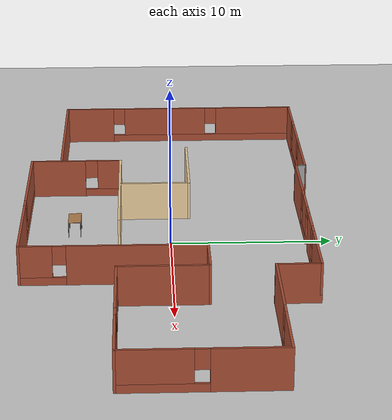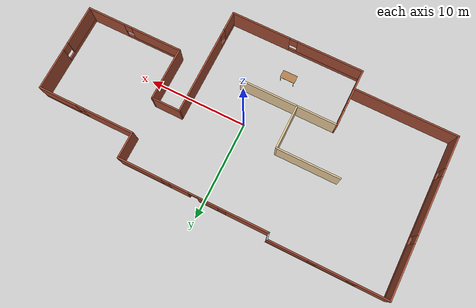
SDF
<sdf version="1.6">
 <world name="default">
  <model name="ground_plane">
   <static>1</static>
   <link name="link">
    <collision name="collision">
     <geometry><plane><normal>0 0 1</normal><size>100 100</size></plane></geometry>
     <surface><friction><ode><mu>100</mu><mu2>50</mu2></ode></friction></surface>
    </collision>
    <visual name="visual">
     <cast_shadows>0</cast_shadows>
     <geometry><plane><normal>0 0 1</normal><size>100 100</size></plane></geometry>
     <material>
      <script><uri>file://media/materials/scripts/gazebo.material</uri><name>Gazebo/Grey</name></script>
     </material>
    </visual>
   </link>
  </model>
  <model name="house2">
   <link name="Wall_33">
    <pose>0.928261 8.42543 0 0 -0 0</pose>
    <visual name="Wall_33_Visual_0">
     <pose>-5.47446 0 1.25 0 -0 0</pose>
     <geometry><box><size>4.30109 0.15 2.5</size></box></geometry>
     <material>
      <script><uri>file://media/materials/scripts/gazebo.material</uri><name>Gazebo/Bricks</name></script>
      <ambient>0.760784 0.662745 0.627451 1</ambient>
     </material>
     <meta><layer>0</layer></meta>
    </visual>
    <collision name="Wall_33_Collision_0">
     <geometry><box><size>4.30109 0.15 2.5</size></box></geometry>
     <pose>-5.47446 0 1.25 0 -0 0</pose>
    </collision>
    <visual name="Wall_33_Visual_1">
     <pose>1.34457 0 1.25 0 -0 0</pose>
     <geometry><box><size>1.93261 0.15 2.5</size></box></geometry>
     <material>
      <script><uri>file://media/materials/scripts/gazebo.material</uri><name>Gazebo/Bricks</name></script>
      <ambient>0.760784 0.662745 0.627451 1</ambient>
     </material>
     <meta><layer>0</layer></meta>
    </visual>
    <collision name="Wall_33_Collision_1">
     <geometry><box><size>1.93261 0.15 2.5</size></box></geometry>
     <pose>1.34457 0 1.25 0 -0 0</pose>
    </collision>
    <visual name="Wall_33_Visual_2">
     <pose>-1.92283 0 0.25 0 -0 0</pose>
     <geometry><box><size>2.80217 0.15 0.5</size></box></geometry>
     <material>
      <script><uri>file://media/materials/scripts/gazebo.material</uri><name>Gazebo/Bricks</name></script>
      <ambient>0.760784 0.662745 0.627451 1</ambient>
     </material>
     <meta><layer>0</layer></meta>
    </visual>
    <collision name="Wall_33_Collision_2">
     <geometry><box><size>2.80217 0.15 0.5</size></box></geometry>
     <pose>-1.92283 0 0.25 0 -0 0</pose>
    </collision>
    <visual name="Wall_33_Visual_3">
     <pose>4.96793 0 0.25 0 -0 0</pose>
     <geometry><box><size>5.31413 0.15 0.5</size></box></geometry>
     <material>
      <script><uri>file://media/materials/scripts/gazebo.material</uri><name>Gazebo/Bricks</name></script>
      <ambient>0.760784 0.662745 0.627451 1</ambient>
     </material>
     <meta><layer>0</layer></meta>
    </visual>
    <collision name="Wall_33_Collision_3">
     <geometry><box><size>5.31413 0.15 0.5</size></box></geometry>
     <pose>4.96793 0 0.25 0 -0 0</pose>
    </collision>
    <visual name="Wall_33_Visual_4">
     <pose>-1.52283 0 1.5 0 -0 0</pose>
     <geometry><box><size>2.00217 0.15 2</size></box></geometry>
     <material>
      <script><uri>file://media/materials/scripts/gazebo.material</uri><name>Gazebo/Bricks</name></script>
      <ambient>0.760784 0.662745 0.627451 1</ambient>
     </material>
     <meta><layer>0</layer></meta>
    </visual>
    <collision name="Wall_33_Collision_4">
     <geometry><box><size>2.00217 0.15 2</size></box></geometry>
     <pose>-1.52283 0 1.5 0 -0 0</pose>
    </collision>
    <visual name="Wall_33_Visual_5">
     <pose>-1.52283 0 1.5 0 -0 0</pose>
     <geometry><box><size>2.00217 0.15 2</size></box></geometry>
     <material>
      <script><uri>file://media/materials/scripts/gazebo.material</uri><name>Gazebo/Bricks</name></script>
      <ambient>0.760784 0.662745 0.627451 1</ambient>
     </material>
     <meta><layer>0</layer></meta>
    </visual>
    <collision name="Wall_33_Collision_5">
     <geometry><box><size>2.00217 0.15 2</size></box></geometry>
     <pose>-1.52283 0 1.5 0 -0 0</pose>
    </collision>
    <visual name="Wall_33_Visual_6">
     <pose>5.36794 0 1.5 0 -0 0</pose>
     <geometry><box><size>4.51413 0.15 2</size></box></geometry>
     <material>
      <script><uri>file://media/materials/scripts/gazebo.material</uri><name>Gazebo/Bricks</name></script>
      <ambient>0.760784 0.662745 0.627451 1</ambient>
     </material>
     <meta><layer>0</layer></meta>
    </visual>
    <collision name="Wall_33_Collision_6">
     <geometry><box><size>4.51413 0.15 2</size></box></geometry>
     <pose>5.36794 0 1.5 0 -0 0</pose>
    </collision>
    <visual name="Wall_33_Visual_7">
     <pose>-2.92391 0 1.9 0 -0 0</pose>
     <geometry><box><size>0.8 0.15 1.2</size></box></geometry>
     <material>
      <script><uri>file://media/materials/scripts/gazebo.material</uri><name>Gazebo/Bricks</name></script>
      <ambient>0.760784 0.662745 0.627451 1</ambient>
     </material>
     <meta><layer>0</layer></meta>
    </visual>
    <collision name="Wall_33_Collision_7">
     <geometry><box><size>0.8 0.15 1.2</size></box></geometry>
     <pose>-2.92391 0 1.9 0 -0 0</pose>
    </collision>
    <visual name="Wall_33_Visual_8">
     <pose>2.71087 0 1.9 0 -0 0</pose>
     <geometry><box><size>0.8 0.15 1.2</size></box></geometry>
     <material>
      <script><uri>file://media/materials/scripts/gazebo.material</uri><name>Gazebo/Bricks</name></script>
      <ambient>0.760784 0.662745 0.627451 1</ambient>
     </material>
     <meta><layer>0</layer></meta>
    </visual>
    <collision name="Wall_33_Collision_8">
     <geometry><box><size>0.8 0.15 1.2</size></box></geometry>
     <pose>2.71087 0 1.9 0 -0 0</pose>
    </collision>
    <visual name="Wall_33_Visual_9">
     <pose>-0.071739 0 2.25 0 -0 0</pose>
     <geometry><box><size>0.9 0.15 0.5</size></box></geometry>
     <material>
      <script><uri>file://media/materials/scripts/gazebo.material</uri><name>Gazebo/Bricks</name></script>
      <ambient>0.760784 0.662745 0.627451 1</ambient>
     </material>
     <meta><layer>0</layer></meta>
    </visual>
    <collision name="Wall_33_Collision_9">
     <geometry><box><size>0.9 0.15 0.5</size></box></geometry>
     <pose>-0.071739 0 2.25 0 -0 0</pose>
    </collision>
    <visual name="Wall_33_Visual_10">
     <pose>-0.071739 0 2.25 0 -0 0</pose>
     <geometry><box><size>0.9 0.15 0.5</size></box></geometry>
     <material>
      <script><uri>file://media/materials/scripts/gazebo.material</uri><name>Gazebo/Bricks</name></script>
      <ambient>0.760784 0.662745 0.627451 1</ambient>
     </material>
     <meta><layer>0</layer></meta>
    </visual>
    <collision name="Wall_33_Collision_10">
     <geometry><box><size>0.9 0.15 0.5</size></box></geometry>
     <pose>-0.071739 0 2.25 0 -0 0</pose>
    </collision>
   </link>
   <link name="Wall_34">
    <collision name="Wall_34_Collision">
     <geometry><box><size>2.75 0.15 2.5</size></box></geometry>
     <pose>0 0 1.25 0 -0 0</pose>
    </collision>
    <visual name="Wall_34_Visual">
     <pose>0 0 1.25 0 -0 0</pose>
     <geometry><box><size>2.75 0.15 2.5</size></box></geometry>
     <material>
      <script><uri>file://media/materials/scripts/gazebo.material</uri><name>Gazebo/Bricks</name></script>
      <ambient>1 1 1 1</ambient>
     </material>
     <meta><layer>0</layer></meta>
    </visual>
    <pose>8.47826 7.12543 0 0 0 -1.5708</pose>
   </link>
   <link name="Wall_35">
    <pose>13.4033 5.82543 0 0 -0 0</pose>
    <visual name="Wall_35_Visual_0">
     <pose>-2.38206 0 1.25 0 -0 0</pose>
     <geometry><box><size>5.23587 0.15 2.5</size></box></geometry>
     <material>
      <script><uri>file://media/materials/scripts/gazebo.material</uri><name>Gazebo/Bricks</name></script>
      <ambient>0.760784 0.662745 0.627451 1</ambient>
     </material>
     <meta><layer>0</layer></meta>
    </visual>
    <collision name="Wall_35_Collision_0">
     <geometry><box><size>5.23587 0.15 2.5</size></box></geometry>
     <pose>-2.38206 0 1.25 0 -0 0</pose>
    </collision>
    <visual name="Wall_35_Visual_1">
     <pose>2.61794 0 0.25 0 -0 0</pose>
     <geometry><box><size>4.76413 0.15 0.5</size></box></geometry>
     <material>
      <script><uri>file://media/materials/scripts/gazebo.material</uri><name>Gazebo/Bricks</name></script>
      <ambient>0.760784 0.662745 0.627451 1</ambient>
     </material>
     <meta><layer>0</layer></meta>
    </visual>
    <collision name="Wall_35_Collision_1">
     <geometry><box><size>4.76413 0.15 0.5</size></box></geometry>
     <pose>2.61794 0 0.25 0 -0 0</pose>
    </collision>
    <visual name="Wall_35_Visual_2">
     <pose>3.01794 0 1.5 0 -0 0</pose>
     <geometry><box><size>3.96413 0.15 2</size></box></geometry>
     <material>
      <script><uri>file://media/materials/scripts/gazebo.material</uri><name>Gazebo/Bricks</name></script>
      <ambient>0.760784 0.662745 0.627451 1</ambient>
     </material>
     <meta><layer>0</layer></meta>
    </visual>
    <collision name="Wall_35_Collision_2">
     <geometry><box><size>3.96413 0.15 2</size></box></geometry>
     <pose>3.01794 0 1.5 0 -0 0</pose>
    </collision>
    <visual name="Wall_35_Visual_3">
     <pose>0.63587 0 1.9 0 -0 0</pose>
     <geometry><box><size>0.8 0.15 1.2</size></box></geometry>
     <material>
      <script><uri>file://media/materials/scripts/gazebo.material</uri><name>Gazebo/Bricks</name></script>
      <ambient>0.760784 0.662745 0.627451 1</ambient>
     </material>
     <meta><layer>0</layer></meta>
    </visual>
    <collision name="Wall_35_Collision_3">
     <geometry><box><size>0.8 0.15 1.2</size></box></geometry>
     <pose>0.63587 0 1.9 0 -0 0</pose>
    </collision>
   </link>
   <link name="Wall_36">
    <pose>18.3283 1.27543 0 0 0 -1.5708</pose>
    <visual name="Wall_36_Visual_0">
     <pose>-2.4875 0 1.25 0 -0 0</pose>
     <geometry><box><size>4.275 0.15 2.5</size></box></geometry>
     <material>
      <script><uri>file://media/materials/scripts/gazebo.material</uri><name>Gazebo/Bricks</name></script>
      <ambient>0.760784 0.662745 0.627451 1</ambient>
     </material>
     <meta><layer>0</layer></meta>
    </visual>
    <collision name="Wall_36_Collision_0">
     <geometry><box><size>4.275 0.15 2.5</size></box></geometry>
     <pose>-2.4875 0 1.25 0 -0 0</pose>
    </collision>
    <visual name="Wall_36_Visual_1">
     <pose>2.1375 0 0.25 0 -0 0</pose>
     <geometry><box><size>4.975 0.15 0.5</size></box></geometry>
     <material>
      <script><uri>file://media/materials/scripts/gazebo.material</uri><name>Gazebo/Bricks</name></script>
      <ambient>0.760784 0.662745 0.627451 1</ambient>
     </material>
     <meta><layer>0</layer></meta>
    </visual>
    <collision name="Wall_36_Collision_1">
     <geometry><box><size>4.975 0.15 0.5</size></box></geometry>
     <pose>2.1375 0 0.25 0 -0 0</pose>
    </collision>
    <visual name="Wall_36_Visual_2">
     <pose>2.5375 0 1.5 0 -0 0</pose>
     <geometry><box><size>4.175 0.15 2</size></box></geometry>
     <material>
      <script><uri>file://media/materials/scripts/gazebo.material</uri><name>Gazebo/Bricks</name></script>
      <ambient>0.760784 0.662745 0.627451 1</ambient>
     </material>
     <meta><layer>0</layer></meta>
    </visual>
    <collision name="Wall_36_Collision_2">
     <geometry><box><size>4.175 0.15 2</size></box></geometry>
     <pose>2.5375 0 1.5 0 -0 0</pose>
    </collision>
    <visual name="Wall_36_Visual_3">
     <pose>0.049999 0 1.9 0 -0 0</pose>
     <geometry><box><size>0.8 0.15 1.2</size></box></geometry>
     <material>
      <script><uri>file://media/materials/scripts/gazebo.material</uri><name>Gazebo/Bricks</name></script>
      <ambient>0.760784 0.662745 0.627451 1</ambient>
     </material>
     <meta><layer>0</layer></meta>
    </visual>
    <collision name="Wall_36_Collision_3">
     <geometry><box><size>0.8 0.15 1.2</size></box></geometry>
     <pose>0.049999 0 1.9 0 -0 0</pose>
    </collision>
   </link>
   <link name="Wall_37">
    <pose>13.4033 -3.27457 0 0 -0 3.14159</pose>
    <visual name="Wall_37_Visual_0">
     <pose>-3.03533 0 1.25 0 -0 0</pose>
     <geometry><box><size>3.92935 0.15 2.5</size></box></geometry>
     <material>
      <script><uri>file://media/materials/scripts/gazebo.material</uri><name>Gazebo/Bricks</name></script>
      <ambient>0.760784 0.662745 0.627451 1</ambient>
     </material>
     <meta><layer>0</layer></meta>
    </visual>
    <collision name="Wall_37_Collision_0">
     <geometry><box><size>3.92935 0.15 2.5</size></box></geometry>
     <pose>-3.03533 0 1.25 0 -0 0</pose>
    </collision>
    <visual name="Wall_37_Visual_1">
     <pose>1.96467 0 0.25 0 -0 0</pose>
     <geometry><box><size>6.07065 0.15 0.5</size></box></geometry>
     <material>
      <script><uri>file://media/materials/scripts/gazebo.material</uri><name>Gazebo/Bricks</name></script>
      <ambient>0.760784 0.662745 0.627451 1</ambient>
     </material>
     <meta><layer>0</layer></meta>
    </visual>
    <collision name="Wall_37_Collision_1">
     <geometry><box><size>6.07065 0.15 0.5</size></box></geometry>
     <pose>1.96467 0 0.25 0 -0 0</pose>
    </collision>
    <visual name="Wall_37_Visual_2">
     <pose>2.36467 0 1.5 0 -0 0</pose>
     <geometry><box><size>5.27065 0.15 2</size></box></geometry>
     <material>
      <script><uri>file://media/materials/scripts/gazebo.material</uri><name>Gazebo/Bricks</name></script>
      <ambient>0.760784 0.662745 0.627451 1</ambient>
     </material>
     <meta><layer>0</layer></meta>
    </visual>
    <collision name="Wall_37_Collision_2">
     <geometry><box><size>5.27065 0.15 2</size></box></geometry>
     <pose>2.36467 0 1.5 0 -0 0</pose>
    </collision>
    <visual name="Wall_37_Visual_3">
     <pose>-0.670652 0 1.9 0 -0 0</pose>
     <geometry><box><size>0.8 0.15 1.2</size></box></geometry>
     <material>
      <script><uri>file://media/materials/scripts/gazebo.material</uri><name>Gazebo/Bricks</name></script>
      <ambient>0.760784 0.662745 0.627451 1</ambient>
     </material>
     <meta><layer>0</layer></meta>
    </visual>
    <collision name="Wall_37_Collision_3">
     <geometry><box><size>0.8 0.15 1.2</size></box></geometry>
     <pose>-0.670652 0 1.9 0 -0 0</pose>
    </collision>
   </link>
   <link name="Wall_38">
    <collision name="Wall_38_Collision">
     <geometry><box><size>5.5 0.15 2.5</size></box></geometry>
     <pose>0 0 1.25 0 -0 0</pose>
    </collision>
    <visual name="Wall_38_Visual">
     <pose>0 0 1.25 0 -0 0</pose>
     <geometry><box><size>5.5 0.15 2.5</size></box></geometry>
     <material>
      <script><uri>file://media/materials/scripts/gazebo.material</uri><name>Gazebo/Bricks</name></script>
      <ambient>1 1 1 1</ambient>
     </material>
     <meta><layer>0</layer></meta>
    </visual>
    <pose>8.47826 -0.599571 0 0 -0 1.5708</pose>
   </link>
   <link name="Wall_39">
    <collision name="Wall_39_Collision">
     <geometry><box><size>3 0.15 2.5</size></box></geometry>
     <pose>0 0 1.25 0 -0 0</pose>
    </collision>
    <visual name="Wall_39_Visual">
     <pose>0 0 1.25 0 -0 0</pose>
     <geometry><box><size>3 0.15 2.5</size></box></geometry>
     <material>
      <script><uri>file://media/materials/scripts/gazebo.material</uri><name>Gazebo/Bricks</name></script>
      <ambient>0.921569 0.807843 0.615686 1</ambient>
     </material>
     <meta><layer>0</layer></meta>
    </visual>
    <pose>7.05326 2.07543 0 0 -0 3.14159</pose>
   </link>
   <link name="Wall_40">
    <pose>5.62826 -3.47457 0 0 0 -1.5708</pose>
    <visual name="Wall_40_Visual_0">
     <pose>-1.43206 0 1.25 0 -0 0</pose>
     <geometry><box><size>8.38587 0.15 2.5</size></box></geometry>
     <material>
      <script><uri>file://media/materials/scripts/gazebo.material</uri><name>Gazebo/Bricks</name></script>
      <ambient>0.760784 0.662745 0.627451 1</ambient>
     </material>
     <meta><layer>0</layer></meta>
    </visual>
    <collision name="Wall_40_Collision_0">
     <geometry><box><size>8.38587 0.15 2.5</size></box></geometry>
     <pose>-1.43206 0 1.25 0 -0 0</pose>
    </collision>
    <visual name="Wall_40_Visual_1">
     <pose>4.19294 0 0.25 0 -0 0</pose>
     <geometry><box><size>2.86413 0.15 0.5</size></box></geometry>
     <material>
      <script><uri>file://media/materials/scripts/gazebo.material</uri><name>Gazebo/Bricks</name></script>
      <ambient>0.760784 0.662745 0.627451 1</ambient>
     </material>
     <meta><layer>0</layer></meta>
    </visual>
    <collision name="Wall_40_Collision_1">
     <geometry><box><size>2.86413 0.15 0.5</size></box></geometry>
     <pose>4.19294 0 0.25 0 -0 0</pose>
    </collision>
    <visual name="Wall_40_Visual_2">
     <pose>4.59293 0 1.5 0 -0 0</pose>
     <geometry><box><size>2.06413 0.15 2</size></box></geometry>
     <material>
      <script><uri>file://media/materials/scripts/gazebo.material</uri><name>Gazebo/Bricks</name></script>
      <ambient>0.760784 0.662745 0.627451 1</ambient>
     </material>
     <meta><layer>0</layer></meta>
    </visual>
    <collision name="Wall_40_Collision_2">
     <geometry><box><size>2.06413 0.15 2</size></box></geometry>
     <pose>4.59293 0 1.5 0 -0 0</pose>
    </collision>
    <visual name="Wall_40_Visual_3">
     <pose>3.16087 0 1.9 0 -0 0</pose>
     <geometry><box><size>0.8 0.15 1.2</size></box></geometry>
     <material>
      <script><uri>file://media/materials/scripts/gazebo.material</uri><name>Gazebo/Bricks</name></script>
      <ambient>0.760784 0.662745 0.627451 1</ambient>
     </material>
     <meta><layer>0</layer></meta>
    </visual>
    <collision name="Wall_40_Collision_3">
     <geometry><box><size>0.8 0.15 1.2</size></box></geometry>
     <pose>3.16087 0 1.9 0 -0 0</pose>
    </collision>
   </link>
   <link name="Wall_41">
    <pose>-1.17174 -9.02457 0 0 -0 3.14159</pose>
    <visual name="Wall_41_Visual_0">
     <pose>-3.79946 0 1.25 0 -0 0</pose>
     <geometry><box><size>6.15109 0.15 2.5</size></box></geometry>
     <material>
      <script><uri>file://media/materials/scripts/gazebo.material</uri><name>Gazebo/Bricks</name></script>
      <ambient>0.760784 0.662745 0.627451 1</ambient>
     </material>
     <meta><layer>0</layer></meta>
    </visual>
    <collision name="Wall_41_Collision_0">
     <geometry><box><size>6.15109 0.15 2.5</size></box></geometry>
     <pose>-3.79946 0 1.25 0 -0 0</pose>
    </collision>
    <visual name="Wall_41_Visual_1">
     <pose>3.07554 0 0.25 0 -0 0</pose>
     <geometry><box><size>7.59891 0.15 0.5</size></box></geometry>
     <material>
      <script><uri>file://media/materials/scripts/gazebo.material</uri><name>Gazebo/Bricks</name></script>
      <ambient>0.760784 0.662745 0.627451 1</ambient>
     </material>
     <meta><layer>0</layer></meta>
    </visual>
    <collision name="Wall_41_Collision_1">
     <geometry><box><size>7.59891 0.15 0.5</size></box></geometry>
     <pose>3.07554 0 0.25 0 -0 0</pose>
    </collision>
    <visual name="Wall_41_Visual_2">
     <pose>3.47554 0 1.5 0 -0 0</pose>
     <geometry><box><size>6.79891 0.15 2</size></box></geometry>
     <material>
      <script><uri>file://media/materials/scripts/gazebo.material</uri><name>Gazebo/Bricks</name></script>
      <ambient>0.760784 0.662745 0.627451 1</ambient>
     </material>
     <meta><layer>0</layer></meta>
    </visual>
    <collision name="Wall_41_Collision_2">
     <geometry><box><size>6.79891 0.15 2</size></box></geometry>
     <pose>3.47554 0 1.5 0 -0 0</pose>
    </collision>
    <visual name="Wall_41_Visual_3">
     <pose>-0.323913 0 1.9 0 -0 0</pose>
     <geometry><box><size>0.8 0.15 1.2</size></box></geometry>
     <material>
      <script><uri>file://media/materials/scripts/gazebo.material</uri><name>Gazebo/Bricks</name></script>
      <ambient>0.760784 0.662745 0.627451 1</ambient>
     </material>
     <meta><layer>0</layer></meta>
    </visual>
    <collision name="Wall_41_Collision_3">
     <geometry><box><size>0.8 0.15 1.2</size></box></geometry>
     <pose>-0.323913 0 1.9 0 -0 0</pose>
    </collision>
   </link>
   <link name="Wall_42">
    <pose>-7.97174 -6.09957 0 0 -0 1.5708</pose>
    <visual name="Wall_42_Visual_0">
     <pose>-1.20272 0 1.25 0 -0 0</pose>
     <geometry><box><size>3.59456 0.15 2.5</size></box></geometry>
     <material>
      <script><uri>file://media/materials/scripts/gazebo.material</uri><name>Gazebo/Bricks</name></script>
      <ambient>0.921569 0.807843 0.615686 1</ambient>
     </material>
     <meta><layer>0</layer></meta>
    </visual>
    <collision name="Wall_42_Collision_0">
     <geometry><box><size>3.59456 0.15 2.5</size></box></geometry>
     <pose>-1.20272 0 1.25 0 -0 0</pose>
    </collision>
    <visual name="Wall_42_Visual_1">
     <pose>1.79728 0 0.25 0 -0 0</pose>
     <geometry><box><size>2.40544 0.15 0.5</size></box></geometry>
     <material>
      <script><uri>file://media/materials/scripts/gazebo.material</uri><name>Gazebo/Bricks</name></script>
      <ambient>0.921569 0.807843 0.615686 1</ambient>
     </material>
     <meta><layer>0</layer></meta>
    </visual>
    <collision name="Wall_42_Collision_1">
     <geometry><box><size>2.40544 0.15 0.5</size></box></geometry>
     <pose>1.79728 0 0.25 0 -0 0</pose>
    </collision>
    <visual name="Wall_42_Visual_2">
     <pose>2.19728 0 1.5 0 -0 0</pose>
     <geometry><box><size>1.60544 0.15 2</size></box></geometry>
     <material>
      <script><uri>file://media/materials/scripts/gazebo.material</uri><name>Gazebo/Bricks</name></script>
      <ambient>0.921569 0.807843 0.615686 1</ambient>
     </material>
     <meta><layer>0</layer></meta>
    </visual>
    <collision name="Wall_42_Collision_2">
     <geometry><box><size>1.60544 0.15 2</size></box></geometry>
     <pose>2.19728 0 1.5 0 -0 0</pose>
    </collision>
    <visual name="Wall_42_Visual_3">
     <pose>0.994564 0 1.9 0 -0 0</pose>
     <geometry><box><size>0.8 0.15 1.2</size></box></geometry>
     <material>
      <script><uri>file://media/materials/scripts/gazebo.material</uri><name>Gazebo/Bricks</name></script>
      <ambient>0.921569 0.807843 0.615686 1</ambient>
     </material>
     <meta><layer>0</layer></meta>
    </visual>
    <collision name="Wall_42_Collision_3">
     <geometry><box><size>0.8 0.15 1.2</size></box></geometry>
     <pose>0.994564 0 1.9 0 -0 0</pose>
    </collision>
   </link>
   <link name="Wall_43">
    <collision name="Wall_43_Collision">
     <geometry><box><size>10 0.15 2.5</size></box></geometry>
     <pose>0 0 1.25 0 -0 0</pose>
    </collision>
    <visual name="Wall_43_Visual">
     <pose>0 0 1.25 0 -0 0</pose>
     <geometry><box><size>10 0.15 2.5</size></box></geometry>
     <material>
      <script><uri>file://media/materials/scripts/gazebo.material</uri><name>Gazebo/Grey</name></script>
      <ambient>0.921569 0.807843 0.615686 1</ambient>
     </material>
     <meta><layer>0</layer></meta>
    </visual>
    <pose>-3.04674 -3.17457 0 0 -0 0</pose>
   </link>
   <link name="Wall_45">
    <collision name="Wall_45_Collision">
     <geometry><box><size>4.5 0.15 2.5</size></box></geometry>
     <pose>0 0 1.25 0 -0 0</pose>
    </collision>
    <visual name="Wall_45_Visual">
     <pose>0 0 1.25 0 -0 0</pose>
     <geometry><box><size>4.5 0.15 2.5</size></box></geometry>
     <material>
      <script><uri>file://media/materials/scripts/gazebo.material</uri><name>Gazebo/Grey</name></script>
      <ambient>0.921569 0.807843 0.615686 1</ambient>
     </material>
     <meta><layer>0</layer></meta>
    </visual>
    <pose>-3.9087 -0.912614 0 0 -0 1.5708</pose>
   </link>
   <link name="Wall_46">
    <collision name="Wall_46_Collision">
     <geometry><box><size>6.5 0.15 2.5</size></box></geometry>
     <pose>0 0 1.25 0 -0 0</pose>
    </collision>
    <visual name="Wall_46_Visual">
     <pose>0 0 1.25 0 -0 0</pose>
     <geometry><box><size>6.5 0.15 2.5</size></box></geometry>
     <material>
      <script><uri>file://media/materials/scripts/gazebo.material</uri><name>Gazebo/Grey</name></script>
      <ambient>0.921569 0.807843 0.615686 1</ambient>
     </material>
     <meta><layer>0</layer></meta>
    </visual>
    <pose>-7.0837 1.26239 0 0 -0 3.14159</pose>
   </link>
   <link name="Wall_48">
    <collision name="Wall_48_Collision">
     <geometry><box><size>10.5 0.15 2.5</size></box></geometry>
     <pose>0 0 1.25 0 -0 0</pose>
    </collision>
    <visual name="Wall_48_Visual">
     <pose>0 0 1.25 0 -0 0</pose>
     <geometry><box><size>10.5 0.15 2.5</size></box></geometry>
     <material>
      <script><uri>file://media/materials/scripts/gazebo.material</uri><name>Gazebo/Bricks</name></script>
      <ambient>0.760784 0.662745 0.627451 1</ambient>
     </material>
     <meta><layer>0</layer></meta>
    </visual>
    <pose>-13.1533 -7.08762 0 0 -0 3.14159</pose>
   </link>
   <link name="Wall_49">
    <pose>-18.3283 0.962386 0 0 -0 1.5708</pose>
    <visual name="Wall_49_Visual_0">
     <pose>-6.42663 0 1.25 0 -0 0</pose>
     <geometry><box><size>3.39674 0.15 2.5</size></box></geometry>
     <material>
      <script><uri>file://media/materials/scripts/gazebo.material</uri><name>Gazebo/Bricks</name></script>
      <ambient>0.760784 0.662745 0.627451 1</ambient>
     </material>
     <meta><layer>0</layer></meta>
    </visual>
    <collision name="Wall_49_Collision_0">
     <geometry><box><size>3.39674 0.15 2.5</size></box></geometry>
     <pose>-6.42663 0 1.25 0 -0 0</pose>
    </collision>
    <visual name="Wall_49_Visual_1">
     <pose>1.69837 0 0.25 0 -0 0</pose>
     <geometry><box><size>12.8533 0.15 0.5</size></box></geometry>
     <material>
      <script><uri>file://media/materials/scripts/gazebo.material</uri><name>Gazebo/Bricks</name></script>
      <ambient>0.760784 0.662745 0.627451 1</ambient>
     </material>
     <meta><layer>0</layer></meta>
    </visual>
    <collision name="Wall_49_Collision_1">
     <geometry><box><size>12.8533 0.15 0.5</size></box></geometry>
     <pose>1.69837 0 0.25 0 -0 0</pose>
    </collision>
    <visual name="Wall_49_Visual_2">
     <pose>-1.00652 0 1.5 0 -0 0</pose>
     <geometry><box><size>5.84348 0.15 2</size></box></geometry>
     <material>
      <script><uri>file://media/materials/scripts/gazebo.material</uri><name>Gazebo/Bricks</name></script>
      <ambient>0.760784 0.662745 0.627451 1</ambient>
     </material>
     <meta><layer>0</layer></meta>
    </visual>
    <collision name="Wall_49_Collision_2">
     <geometry><box><size>5.84348 0.15 2</size></box></geometry>
     <pose>-1.00652 0 1.5 0 -0 0</pose>
    </collision>
    <visual name="Wall_49_Visual_3">
     <pose>5.42011 0 1.5 0 -0 0</pose>
     <geometry><box><size>5.40978 0.15 2</size></box></geometry>
     <material>
      <script><uri>file://media/materials/scripts/gazebo.material</uri><name>Gazebo/Bricks</name></script>
      <ambient>0.760784 0.662745 0.627451 1</ambient>
     </material>
     <meta><layer>0</layer></meta>
    </visual>
    <collision name="Wall_49_Collision_3">
     <geometry><box><size>5.40978 0.15 2</size></box></geometry>
     <pose>5.42011 0 1.5 0 -0 0</pose>
    </collision>
    <visual name="Wall_49_Visual_4">
     <pose>-4.32826 0 1.9 0 -0 0</pose>
     <geometry><box><size>0.8 0.15 1.2</size></box></geometry>
     <material>
      <script><uri>file://media/materials/scripts/gazebo.material</uri><name>Gazebo/Bricks</name></script>
      <ambient>0.760784 0.662745 0.627451 1</ambient>
     </material>
     <meta><layer>0</layer></meta>
    </visual>
    <collision name="Wall_49_Collision_4">
     <geometry><box><size>0.8 0.15 1.2</size></box></geometry>
     <pose>-4.32826 0 1.9 0 -0 0</pose>
    </collision>
    <visual name="Wall_49_Visual_5">
     <pose>2.31522 0 1.9 0 -0 0</pose>
     <geometry><box><size>0.8 0.15 1.2</size></box></geometry>
     <material>
      <script><uri>file://media/materials/scripts/gazebo.material</uri><name>Gazebo/Bricks</name></script>
      <ambient>0.760784 0.662745 0.627451 1</ambient>
     </material>
     <meta><layer>0</layer></meta>
    </visual>
    <collision name="Wall_49_Collision_5">
     <geometry><box><size>0.8 0.15 1.2</size></box></geometry>
     <pose>2.31522 0 1.9 0 -0 0</pose>
    </collision>
   </link>
   <link name="Wall_50">
    <pose>-12.5283 9.01239 0 0 -0 0</pose>
    <visual name="Wall_50_Visual_0">
     <pose>-4.30598 0 1.25 0 -0 0</pose>
     <geometry><box><size>3.13804 0.15 2.5</size></box></geometry>
     <material>
      <script><uri>file://media/materials/scripts/gazebo.material</uri><name>Gazebo/Bricks</name></script>
      <ambient>1 1 1 1</ambient>
     </material>
     <meta><layer>0</layer></meta>
    </visual>
    <collision name="Wall_50_Collision_0">
     <geometry><box><size>3.13804 0.15 2.5</size></box></geometry>
     <pose>-4.30598 0 1.25 0 -0 0</pose>
    </collision>
    <visual name="Wall_50_Visual_1">
     <pose>1.56902 0 0.25 0 -0 0</pose>
     <geometry><box><size>8.61196 0.15 0.5</size></box></geometry>
     <material>
      <script><uri>file://media/materials/scripts/gazebo.material</uri><name>Gazebo/Bricks</name></script>
      <ambient>1 1 1 1</ambient>
     </material>
     <meta><layer>0</layer></meta>
    </visual>
    <collision name="Wall_50_Collision_1">
     <geometry><box><size>8.61196 0.15 0.5</size></box></geometry>
     <pose>1.56902 0 0.25 0 -0 0</pose>
    </collision>
    <visual name="Wall_50_Visual_2">
     <pose>-0.441305 0 1.5 0 -0 0</pose>
     <geometry><box><size>2.99131 0.15 2</size></box></geometry>
     <material>
      <script><uri>file://media/materials/scripts/gazebo.material</uri><name>Gazebo/Bricks</name></script>
      <ambient>1 1 1 1</ambient>
     </material>
     <meta><layer>0</layer></meta>
    </visual>
    <collision name="Wall_50_Collision_2">
     <geometry><box><size>2.99131 0.15 2</size></box></geometry>
     <pose>-0.441305 0 1.5 0 -0 0</pose>
    </collision>
    <visual name="Wall_50_Visual_3">
     <pose>3.86467 0 1.5 0 -0 0</pose>
     <geometry><box><size>4.02065 0.15 2</size></box></geometry>
     <material>
      <script><uri>file://media/materials/scripts/gazebo.material</uri><name>Gazebo/Bricks</name></script>
      <ambient>1 1 1 1</ambient>
     </material>
     <meta><layer>0</layer></meta>
    </visual>
    <collision name="Wall_50_Collision_3">
     <geometry><box><size>4.02065 0.15 2</size></box></geometry>
     <pose>3.86467 0 1.5 0 -0 0</pose>
    </collision>
    <visual name="Wall_50_Visual_4">
     <pose>-2.33696 0 1.9 0 -0 0</pose>
     <geometry><box><size>0.8 0.15 1.2</size></box></geometry>
     <material>
      <script><uri>file://media/materials/scripts/gazebo.material</uri><name>Gazebo/Bricks</name></script>
      <ambient>1 1 1 1</ambient>
     </material>
     <meta><layer>0</layer></meta>
    </visual>
    <collision name="Wall_50_Collision_4">
     <geometry><box><size>0.8 0.15 1.2</size></box></geometry>
     <pose>-2.33696 0 1.9 0 -0 0</pose>
    </collision>
    <visual name="Wall_50_Visual_5">
     <pose>1.45435 0 1.9 0 -0 0</pose>
     <geometry><box><size>0.8 0.15 1.2</size></box></geometry>
     <material>
      <script><uri>file://media/materials/scripts/gazebo.material</uri><name>Gazebo/Bricks</name></script>
      <ambient>1 1 1 1</ambient>
     </material>
     <meta><layer>0</layer></meta>
    </visual>
    <collision name="Wall_50_Collision_5">
     <geometry><box><size>0.8 0.15 1.2</size></box></geometry>
     <pose>1.45435 0 1.9 0 -0 0</pose>
    </collision>
   </link>
   <link name="Wall_51">
    <collision name="Wall_51_Collision">
     <geometry><box><size>0.746544 0.15 2.5</size></box></geometry>
     <pose>0 0 1.25 0 -0 0</pose>
    </collision>
    <visual name="Wall_51_Visual">
     <pose>0 0 1.25 0 -0 0</pose>
     <geometry><box><size>0.746544 0.15 2.5</size></box></geometry>
     <material>
      <script><uri>file://media/materials/scripts/gazebo.material</uri><name>Gazebo/Grey</name></script>
      <ambient>1 1 1 1</ambient>
     </material>
     <meta><layer>0</layer></meta>
    </visual>
    <pose>-6.675 8.71891 0 0 0 -1.39127</pose>
   </link>
   <static>1</static>
  </model>
  <model name="table">
   <static>1</static>
   <link name="link">
    <collision name="surface">
     <pose>0 0 1 0 -0 0</pose>
     <geometry><box><size>1.5 0.8 0.03</size></box></geometry>
     <surface><friction><ode><mu>0.6</mu><mu2>0.6</mu2></ode></friction></surface>
    </collision>
    <visual name="visual1">
     <pose>0 0 1 0 -0 0</pose>
     <geometry><box><size>1.5 0.8 0.03</size></box></geometry>
     <material>
      <script><uri>file://media/materials/scripts/gazebo.material</uri><name>Gazebo/Wood</name></script>
     </material>
    </visual>
    <collision name="front_left_leg">
     <pose>0.68 0.38 0.5 0 -0 0</pose>
     <geometry><cylinder><radius>0.02</radius><length>1</length></cylinder></geometry>
    </collision>
    <visual name="front_left_leg">
     <pose>0.68 0.38 0.5 0 -0 0</pose>
     <geometry><cylinder><radius>0.02</radius><length>1</length></cylinder></geometry>
     <material>
      <script><uri>file://media/materials/scripts/gazebo.material</uri><name>Gazebo/Grey</name></script>
     </material>
    </visual>
    <collision name="front_right_leg">
     <pose>0.68 -0.38 0.5 0 -0 0</pose>
     <geometry><cylinder><radius>0.02</radius><length>1</length></cylinder></geometry>
    </collision>
    <visual name="front_right_leg">
     <pose>0.68 -0.38 0.5 0 -0 0</pose>
     <geometry><cylinder><radius>0.02</radius><length>1</length></cylinder></geometry>
     <material>
      <script><uri>file://media/materials/scripts/gazebo.material</uri><name>Gazebo/Grey</name></script>
     </material>
    </visual>
    <collision name="back_right_leg">
     <pose>-0.68 -0.38 0.5 0 -0 0</pose>
     <geometry><cylinder><radius>0.02</radius><length>1</length></cylinder></geometry>
    </collision>
    <visual name="back_right_leg">
     <pose>-0.68 -0.38 0.5 0 -0 0</pose>
     <geometry><cylinder><radius>0.02</radius><length>1</length></cylinder></geometry>
     <material>
      <script><uri>file://media/materials/scripts/gazebo.material</uri><name>Gazebo/Grey</name></script>
     </material>
    </visual>
    <collision name="back_left_leg">
     <pose>-0.68 0.38 0.5 0 -0 0</pose>
     <geometry><cylinder><radius>0.02</radius><length>1</length></cylinder></geometry>
    </collision>
    <visual name="back_left_leg">
     <pose>-0.68 0.38 0.5 0 -0 0</pose>
     <geometry><cylinder><radius>0.02</radius><length>1</length></cylinder></geometry>
     <material>
      <script><uri>file://media/materials/scripts/gazebo.material</uri><name>Gazebo/Grey</name></script>
     </material>
    </visual>
   </link>
   <pose>-1.83642 -6.01914 0 0 -0 0</pose>
  </model>
 </world>
</sdf>
